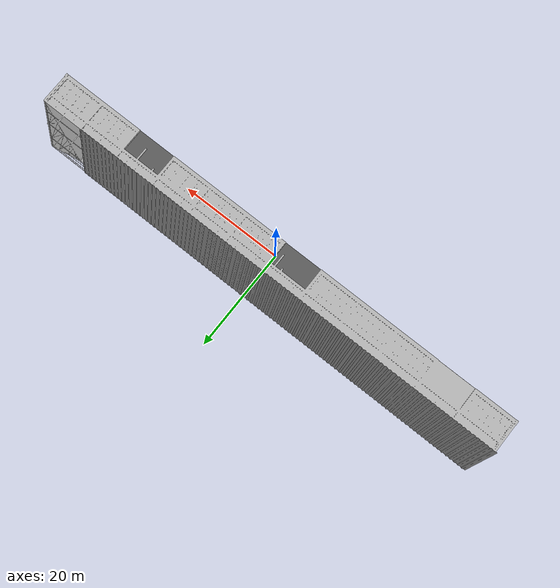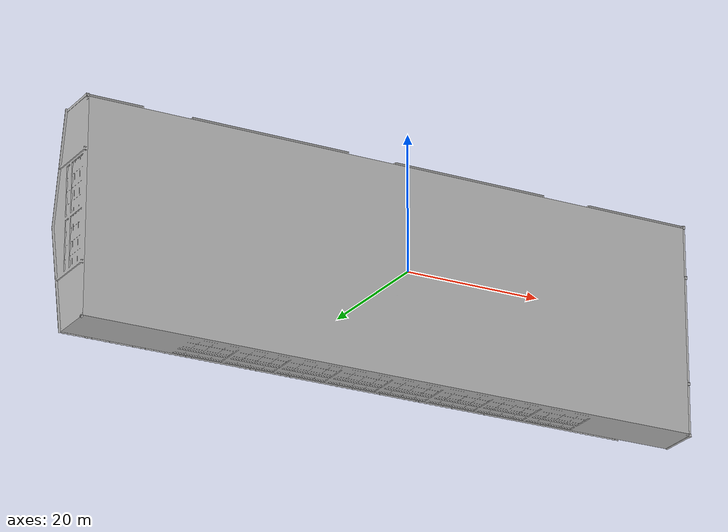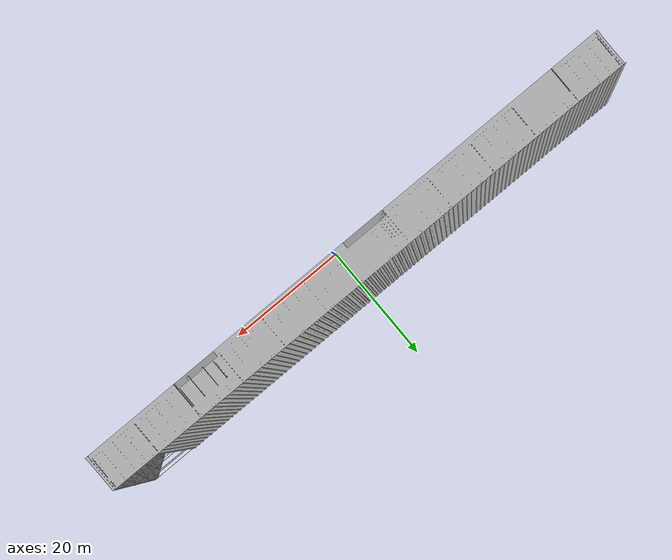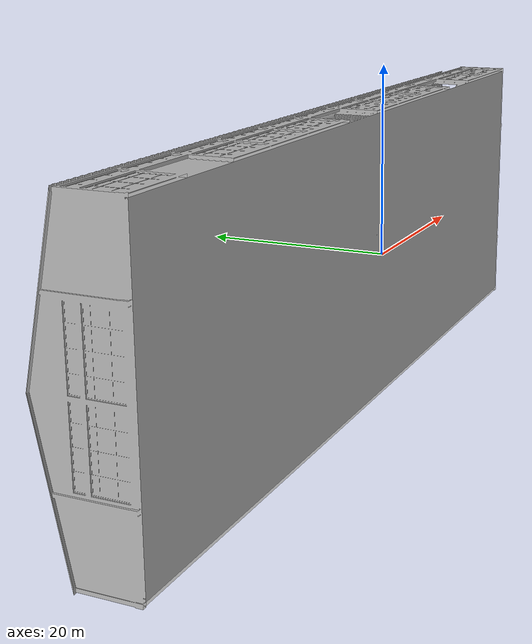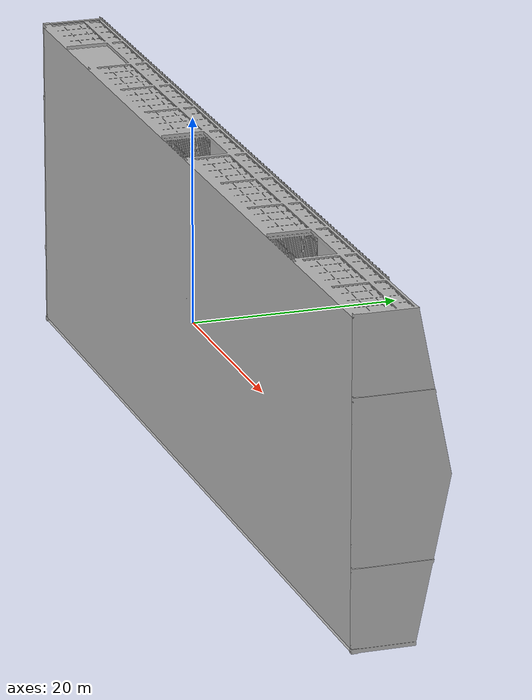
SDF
<?xml version="1.0" ?>
<sdf version="1.6">
  <model name="warehouse">
    <static>true</static>
    <link name="link">
      <collision name="collision">
        <geometry>
          <mesh>
            <scale>1 1 1</scale>
            <uri>model://warehouse/meshes/warehouse.obj</uri>
          </mesh>
        </geometry>
      </collision>
      <visual name="visual">
        <geometry>
          <mesh>
            <scale>1 1 1</scale>
            <uri>model://warehouse/meshes/warehouse.obj</uri>
          </mesh>
        </geometry>
      </visual>
    </link>
  </model>
</sdf>
